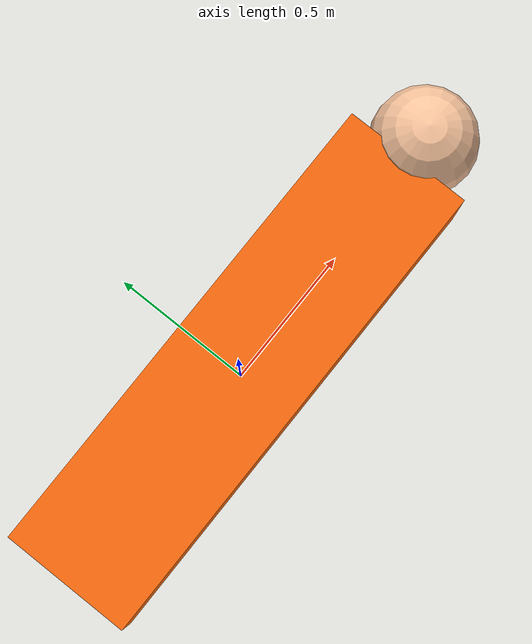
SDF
<?xml version="1.0"?>
<sdf version="1.9">
  <model name="survivor">
    <static>true</static>
    <link name="link">
      <collision name="torso_collision">
        <pose>0 0 0.15 0 0 0</pose>
        <geometry>
          <box>
            <size>1.7 0.45 0.3</size>
          </box>
        </geometry>
      </collision>

      <visual name="torso_visual">
        <pose>0 0 0.15 0 0 0</pose>
        <geometry>
          <box>
            <size>1.7 0.45 0.3</size>
          </box>
        </geometry>
        <material>
          <ambient>0.9 0.35 0.05 1</ambient>
          <diffuse>0.95 0.4 0.05 1</diffuse>
          <specular>0.2 0.2 0.2 1</specular>
        </material>
      </visual>

      <visual name="head_visual">
        <pose>0.95 0 0.2 0 0 0</pose>
        <geometry>
          <sphere>
            <radius>0.18</radius>
          </sphere>
        </geometry>
        <material>
          <ambient>0.9 0.7 0.55 1</ambient>
          <diffuse>0.95 0.75 0.6 1</diffuse>
          <specular>0.2 0.2 0.2 1</specular>
        </material>
      </visual>
    </link>
  </model>
</sdf>
